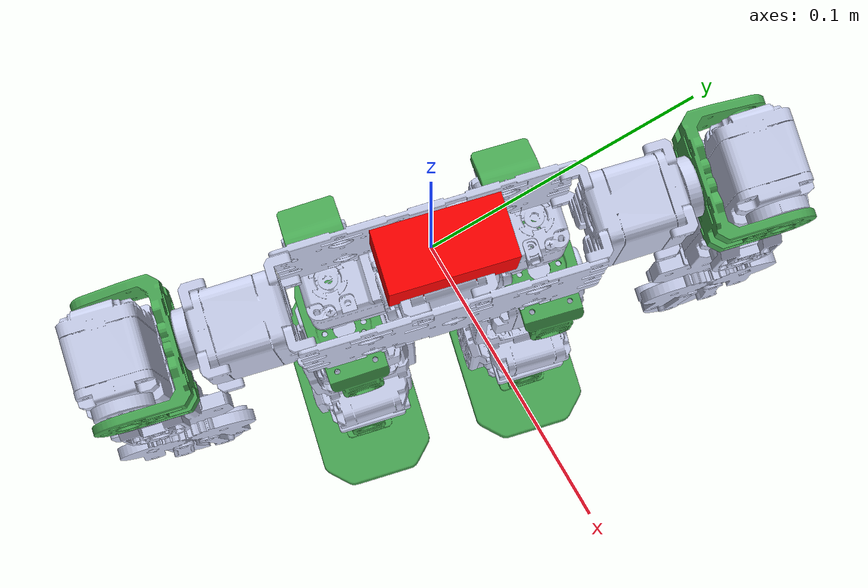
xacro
<?xml version="1.0"?>
<robot xmlns:xacro="http://www.ros.org/wiki/xacro" name="view_robot_pkg">
    <xacro:arg name="initial_positions_file" default="initial_positions.yaml" />

    <!-- Import view_robot_pkg urdf file -->
    <xacro:include filename="$(find view_robot_pkg)/urdf/robot_description.urdf" />

    <!-- Import control_xacro -->
    <xacro:include filename="view_robot_pkg.ros2_control.xacro" />

    <xacro:view_robot_pkg_ros2_control name="FakeSystem" initial_positions_file="$(arg initial_positions_file)"/>

</robot>

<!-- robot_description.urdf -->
<robot
  name="view_robot_pkg">
  <link
    name="base_lin">
    <inertial>
      <origin
        xyz="0.00360572903498757 0.00118309605607281 0.00217711576246571"
        rpy="0 0 0" />
      <mass
        value="0.00436456608198958" />
      <inertia
        ixx="1.03700098227038E-06"
        ixy="-1.2808652170486E-07"
        ixz="-1.24574759195156E-07"
        iyy="5.23421759609031E-07"
        iyz="3.00902000693848E-08"
        izz="1.11895824239189E-06" />
    </inertial>
    <visual>
      <origin
        xyz="0 0 0"
        rpy="0 0 0" />
      <geometry>
        <mesh
          filename="package://view_robot_pkg/meshes/base_lin.STL" />
      </geometry>
      <material
        name="">
        <color
          rgba="0.792156862745098 0.819607843137255 0.933333333333333 1" />
      </material>
    </visual>
    <collision>
      <origin
        xyz="0 0 0"
        rpy="0 0 0" />
      <geometry>
        <mesh
          filename="package://view_robot_pkg/meshes/base_lin.STL" />
      </geometry>
    </collision>
  </link>
  <link
    name="R_W_1">
    <inertial>
      <origin
        xyz="0.0135310577359082 -0.0355253365427388 -0.052761768139199"
        rpy="0 0 0" />
      <mass
        value="0.152073564561278" />
      <inertia
        ixx="0.00220129498898566"
        ixy="-2.43000627132473E-06"
        ixz="-5.02051972199334E-06"
        iyy="0.00129797606901867"
        iyz="4.95365662374062E-06"
        izz="0.000970481901105194" />
    </inertial>
    <visual>
      <origin
        xyz="0 0 0"
        rpy="0 0 0" />
      <geometry>
        <mesh
          filename="package://view_robot_pkg/meshes/R_W_1.STL" />
      </geometry>
      <material
        name="">
        <color
          rgba="0.286274509803922 0.662745098039216 0.329411764705882 1" />
      </material>
    </visual>
    <collision>
      <origin
        xyz="0 0 0"
        rpy="0 0 0" />
      <geometry>
        <mesh
          filename="package://view_robot_pkg/meshes/R_W_1.STL" />
      </geometry>
    </collision>
  </link>
  <joint
    name="LHip_yaw"
    type="revolute">
    <origin
      xyz="0.00811191095429442 0.0343859376847431 -0.0358999999999563"
      rpy="-0.0295865830615605 -0.00698131700551125 -0.231656625322495" />
    <parent
      link="base_lin" />
    <child
      link="R_W_1" />
    <axis
      xyz="-0.00698126029799116 0.0295815458381401 -0.99953799034878" />
    <limit
      lower="-2.79"
      upper="2.79"
      effort="1.2"
      velocity="6.3" />
  </joint>
  <link
    name="R_W_2">
    <inertial>
      <origin
        xyz="0.0348267429071289 -0.000161718132895672 -0.013079020937468"
        rpy="0 0 0" />
      <mass
        value="0.00053474319201658" />
      <inertia
        ixx="3.81196631534239E-09"
        ixy="4.8199716472387E-12"
        ixz="1.12935089535727E-11"
        iyy="4.21629884233603E-09"
        iyz="-2.45179082569498E-11"
        izz="5.38948960510623E-09" />
    </inertial>
    <visual>
      <origin
        xyz="0 0 0"
        rpy="0 0 0" />
      <geometry>
        <mesh
          filename="package://view_robot_pkg/meshes/R_W_2.STL" />
      </geometry>
      <material
        name="">
        <color
          rgba="0.792156862745098 0.819607843137255 0.933333333333333 1" />
      </material>
    </visual>
    <collision>
      <origin
        xyz="0 0 0"
        rpy="0 0 0" />
      <geometry>
        <mesh
          filename="package://view_robot_pkg/meshes/R_W_2.STL" />
      </geometry>
    </collision>
  </link>
  <joint
    name="LHip_roll"
    type="revolute">
    <origin
      xyz="-0.0350660356311487 0.00115022718562807 -0.0240322725212692"
      rpy="0 0 0" />
    <parent
      link="R_W_1" />
    <child
      link="R_W_2" />
    <axis
      xyz="0.999896590427051 -0.0123609060710088 -0.00734958865932969" />
    <limit
      lower="-2.79"
      upper="2.79"
      effort="1.2"
      velocity="6.3" />
  </joint>
  <link
    name="R_W_3">
    <inertial>
      <origin
        xyz="-0.00366906536477185 0.0206923269048276 -0.064013310924508"
        rpy="0 0 0" />
      <mass
        value="0.00409019778385964" />
      <inertia
        ixx="1.06330826557753E-06"
        ixy="-3.67250983349582E-09"
        ixz="-1.27947501575626E-07"
        iyy="4.91110344706927E-07"
        iyz="-1.75096861655991E-08"
        izz="1.11815791917397E-06" />
    </inertial>
    <visual>
      <origin
        xyz="0 0 0"
        rpy="0 0 0" />
      <geometry>
        <mesh
          filename="package://view_robot_pkg/meshes/R_W_3.STL" />
      </geometry>
      <material
        name="">
        <color
          rgba="0.792156862745098 0.819607843137255 0.933333333333333 1" />
      </material>
    </visual>
    <collision>
      <origin
        xyz="0 0 0"
        rpy="0 0 0" />
      <geometry>
        <mesh
          filename="package://view_robot_pkg/meshes/R_W_3.STL" />
      </geometry>
    </collision>
  </link>
  <joint
    name="LHip_pitch"
    type="revolute">
    <origin
      xyz="0.0462337025626653 -0.0223530513381598 -0.00111240331126483"
      rpy="0 0 0" />
    <parent
      link="R_W_2" />
    <child
      link="R_W_3" />
    <axis
      xyz="-0.0125726074067991 -0.999485937943567 -0.0294921921203482" />
    <limit
      lower="-2.79"
      upper="2.79"
      effort="1.2"
      velocity="6.3" />
  </joint>
  <link
    name="R_N_1">
    <inertial>
      <origin
        xyz="0.0180911931167852 0.0174794377607834 -0.0155248520163054"
        rpy="0 0 0" />
      <mass
        value="0.00406217575232337" />
      <inertia
        ixx="3.58680966433164E-07"
        ixy="-1.36796623061842E-09"
        ixz="3.00792440067483E-09"
        iyy="4.52712722842304E-07"
        iyz="-9.83119522170605E-09"
        izz="7.96923604729599E-07" />
    </inertial>
    <visual>
      <origin
        xyz="0 0 0"
        rpy="0 0 0" />
      <geometry>
        <mesh
          filename="package://view_robot_pkg/meshes/R_N_1.STL" />
      </geometry>
      <material
        name="">
        <color
          rgba="0.792156862745098 0.819607843137255 0.933333333333333 1" />
      </material>
    </visual>
    <collision>
      <origin
        xyz="0 0 0"
        rpy="0 0 0" />
      <geometry>
        <mesh
          filename="package://view_robot_pkg/meshes/R_N_1.STL" />
      </geometry>
    </collision>
  </link>
  <joint
    name="LKnee_pitch"
    type="revolute">
    <origin
      xyz="-0.0122338652690933 0.00291198983896201 -0.0773641940455132"
      rpy="0 0 0" />
    <parent
      link="R_W_3" />
    <child
      link="R_N_1" />
    <axis
      xyz="0.012572607406823 0.999485937943566 0.0294921921203551" />
    <limit
      lower="-2.79"
      upper="2.79"
      effort="1.2"
      velocity="6.3" />
  </joint>
  <link
    name="R_A_1">
    <inertial>
      <origin
        xyz="0.00906436446976777 0.0212998378074056 0.00109078883632363"
        rpy="0 0 0" />
      <mass
        value="0.00272881286947315" />
      <inertia
        ixx="1.64229681803521E-07"
        ixy="2.4326999108096E-10"
        ixz="-1.3340308998563E-10"
        iyy="8.86535064342371E-08"
        iyz="-1.26998727090048E-10"
        izz="9.18493082595308E-08" />
    </inertial>
    <visual>
      <origin
        xyz="0 0 0"
        rpy="0 0 0" />
      <geometry>
        <mesh
          filename="package://view_robot_pkg/meshes/R_A_1.STL" />
      </geometry>
      <material
        name="">
        <color
          rgba="0.792156862745098 0.819607843137255 0.933333333333333 1" />
      </material>
    </visual>
    <collision>
      <origin
        xyz="0 0 0"
        rpy="0 0 0" />
      <geometry>
        <mesh
          filename="package://view_robot_pkg/meshes/R_A_1.STL" />
      </geometry>
    </collision>
  </link>
  <joint
    name="LAnkle_pitch"
    type="revolute">
    <origin
      xyz="0.0116386736214952 0.00109273068918236 -0.0774847266386327"
      rpy="0 0 0" />
    <parent
      link="R_N_1" />
    <child
      link="R_A_1" />
    <axis
      xyz="0.00321902611343638 -0.999556505100927 -0.0296045770329757" />
    <limit
      lower="-2.79"
      upper="2.79"
      effort="1.2"
      velocity="6.3" />
  </joint>
  <link
    name="R_A_2">
    <inertial>
      <origin
        xyz="0.0430494211015171 0.00106475615608614 -0.0292398518791859"
        rpy="0 0 0" />
      <mass
        value="0.0107696045303586" />
      <inertia
        ixx="2.38077899159162E-06"
        ixy="-7.53555463459518E-10"
        ixz="5.55369185912146E-08"
        iyy="7.30172054483324E-06"
        iyz="-6.9852711783785E-08"
        izz="9.65966781504387E-06" />
    </inertial>
    <visual>
      <origin
        xyz="0 0 0"
        rpy="0 0 0" />
      <geometry>
        <mesh
          filename="package://view_robot_pkg/meshes/R_A_2.STL" />
      </geometry>
      <material
        name="">
        <color
          rgba="0.286274509803922 0.662745098039216 0.329411764705882 1" />
      </material>
    </visual>
    <collision>
      <origin
        xyz="0 0 0"
        rpy="0 0 0" />
      <geometry>
        <mesh
          filename="package://view_robot_pkg/meshes/R_A_2.STL" />
      </geometry>
    </collision>
  </link>
  <joint
    name="LAnkle_roll"
    type="revolute">
    <origin
      xyz="-0.0466491161038564 0.0211292222358059 0.000725339778560485"
      rpy="0 0 0" />
    <parent
      link="R_A_1" />
    <child
      link="R_A_2" />
    <axis
      xyz="0.999964392032425 0.00344846027439361 -0.00770212885881819" />
    <limit
      lower="-2.79"
      upper="2.79"
      effort="1.2"
      velocity="6.3" />
  </joint>
  <link
    name="L_W_1">
    <inertial>
      <origin
        xyz="0.0198755299031583 0.0300308834006024 -0.0518252471094609"
        rpy="0 0 0" />
      <mass
        value="0.152073564561278" />
      <inertia
        ixx="0.00216862030111371"
        ixy="-0.000168715022494926"
        ixz="2.27879942313857E-06"
        iyy="0.00133058381521921"
        iyz="-7.6047271917558E-06"
        izz="0.000970548842776614" />
    </inertial>
    <visual>
      <origin
        xyz="0 0 0"
        rpy="0 0 0" />
      <geometry>
        <mesh
          filename="package://view_robot_pkg/meshes/L_W_1.STL" />
      </geometry>
      <material
        name="">
        <color
          rgba="0.286274509803922 0.662745098039216 0.329411764705882 1" />
      </material>
    </visual>
    <collision>
      <origin
        xyz="0 0 0"
        rpy="0 0 0" />
      <geometry>
        <mesh
          filename="package://view_robot_pkg/meshes/L_W_1.STL" />
      </geometry>
    </collision>
  </link>
  <joint
    name="RHip_yaw"
    type="revolute">
    <origin
      xyz="-0.00811115881539393 -0.034382750486029 -0.0359000000000256"
      rpy="0.00685752129495438 -0.00130889866810499 -0.0430575611663204" />
    <parent
      link="base_lin" />
    <child
      link="L_W_1" />
    <axis
      xyz="-0.00130889829658463 -0.00685746167291572 -0.999975630705396" />
    <limit
      lower="-2.79"
      upper="2.79"
      effort="1.2"
      velocity="6.3" />
  </joint>
  <link
    name="L_W_2">
    <inertial>
      <origin
        xyz="0.0349529105405521 0.000637258724828671 0.00110937814476841"
        rpy="0 0 0" />
      <mass
        value="0.000548582459427165" />
      <inertia
        ixx="4.2009379147889E-09"
        ixy="4.5835594675733E-12"
        ixz="9.19876249753698E-12"
        iyy="3.94859601140859E-09"
        iyz="-5.84836288599058E-11"
        izz="5.46020489769509E-09" />
    </inertial>
    <visual>
      <origin
        xyz="0 0 0"
        rpy="0 0 0" />
      <geometry>
        <mesh
          filename="package://view_robot_pkg/meshes/L_W_2.STL" />
      </geometry>
      <material
        name="">
        <color
          rgba="0.792156862745098 0.819607843137255 0.933333333333333 1" />
      </material>
    </visual>
    <collision>
      <origin
        xyz="0 0 0"
        rpy="0 0 0" />
      <geometry>
        <mesh
          filename="package://view_robot_pkg/meshes/L_W_2.STL" />
      </geometry>
    </collision>
  </link>
  <joint
    name="RHip_roll"
    type="revolute">
    <origin
      xyz="-0.0344340076210223 0.00570690748207037 -0.0242946563290467"
      rpy="-0.0365680701988691 -0.00698114687545119 -0.188554812891601" />
    <parent
      link="L_W_1" />
    <child
      link="L_W_2" />
    <axis
      xyz="0.999785460209647 0.019699590675994 -0.00639997504543661" />
    <limit
      lower="-2.79"
      upper="2.79"
      effort="1.2"
      velocity="6.3" />
  </joint>
  <link
    name="L_W_3">
    <inertial>
      <origin
        xyz="-0.00368840681064642 -0.0172743724623736 -0.0653797701648462"
        rpy="0 0 0" />
      <mass
        value="0.00416880860873003" />
      <inertia
        ixx="1.06373644976686E-06"
        ixy="1.47090858434795E-08"
        ixz="-1.27369159994478E-07"
        iyy="4.92510709050603E-07"
        iyz="-2.17234809212734E-08"
        izz="1.11844723976545E-06" />
    </inertial>
    <visual>
      <origin
        xyz="0 0 0"
        rpy="0 0 0" />
      <geometry>
        <mesh
          filename="package://view_robot_pkg/meshes/L_W_3.STL" />
      </geometry>
      <material
        name="">
        <color
          rgba="0.792156862745098 0.819607843137255 0.933333333333333 1" />
      </material>
    </visual>
    <collision>
      <origin
        xyz="0 0 0"
        rpy="0 0 0" />
      <geometry>
        <mesh
          filename="package://view_robot_pkg/meshes/L_W_3.STL" />
      </geometry>
    </collision>
  </link>
  <joint
    name="RHip_pitch"
    type="revolute">
    <origin
      xyz="0.0461667822915901 0.0215038971400305 4.99520127628106E-05"
      rpy="0 0 0" />
    <parent
      link="L_W_2" />
    <child
      link="L_W_3" />
    <axis
      xyz="-0.0195011681197361 0.999368229569572 0.0297127273898547" />
    <limit
      lower="-2.79"
      upper="2.79"
      effort="1.2"
      velocity="6.3" />
  </joint>
  <link
    name="L_N_1">
    <inertial>
      <origin
        xyz="0.0182399394741348 -0.0206609308045556 -0.0166545672069358"
        rpy="0 0 0" />
      <mass
        value="0.00406217499121926" />
      <inertia
        ixx="3.5868071601581E-07"
        ixy="-1.3554655679744E-09"
        ixz="2.9967520697757E-09"
        iyy="4.52712810861831E-07"
        iyz="-9.83132372705578E-09"
        izz="7.96923757052267E-07" />
    </inertial>
    <visual>
      <origin
        xyz="0 0 0"
        rpy="0 0 0" />
      <geometry>
        <mesh
          filename="package://view_robot_pkg/meshes/L_N_1.STL" />
      </geometry>
      <material
        name="">
        <color
          rgba="0.792156862745098 0.819607843137255 0.933333333333333 1" />
      </material>
    </visual>
    <collision>
      <origin
        xyz="0 0 0"
        rpy="0 0 0" />
      <geometry>
        <mesh
          filename="package://view_robot_pkg/meshes/L_N_1.STL" />
      </geometry>
    </collision>
  </link>
  <joint
    name="RKnee_pitch"
    type="revolute">
    <origin
      xyz="-0.0122292736907317 0.00158734307245378 -0.0774034293266377"
      rpy="0 0 0" />
    <parent
      link="L_W_3" />
    <child
      link="L_N_1" />
    <axis
      xyz="0.0195011681198009 -0.999368229569575 -0.0297127273897283" />
    <limit
      lower="-2.79"
      upper="2.79"
      effort="1.2"
      velocity="6.3" />
  </joint>
  <link
    name="L_A_1">
    <inertial>
      <origin
        xyz="0.00921711872720943 -0.0200210253235265 0.00261268459792596"
        rpy="0 0 0" />
      <mass
        value="0.00270980906824081" />
      <inertia
        ixx="1.64099947129278E-07"
        ixy="5.85484159216669E-10"
        ixz="-5.54936055314888E-11"
        iyy="8.8811595074974E-08"
        iyz="-1.26594825208358E-10"
        izz="9.12773083050912E-08" />
    </inertial>
    <visual>
      <origin
        xyz="0 0 0"
        rpy="0 0 0" />
      <geometry>
        <mesh
          filename="package://view_robot_pkg/meshes/L_A_1.STL" />
      </geometry>
      <material
        name="">
        <color
          rgba="0.792156862745098 0.819607843137255 0.933333333333333 1" />
      </material>
    </visual>
    <collision>
      <origin
        xyz="0 0 0"
        rpy="0 0 0" />
      <geometry>
        <mesh
          filename="package://view_robot_pkg/meshes/L_A_1.STL" />
      </geometry>
    </collision>
  </link>
  <joint
    name="RAnkle_pitch"
    type="revolute">
    <origin
      xyz="0.0116621204095037 -0.000762059454564312 -0.0775407363717699"
      rpy="0 0 0" />
    <parent
      link="L_N_1" />
    <child
      link="L_A_1" />
    <axis
      xyz="-0.00321902611345547 0.999556505100927 0.0296045770329677" />
    <limit
      lower="-2.79"
      upper="2.79"
      effort="1.2"
      velocity="6.3" />
  </joint>
  <link
    name="L_A_2">
    <inertial>
      <origin
        xyz="0.0430733910529578 0.00106370731759919 -0.0292045648561665"
        rpy="0 0 0" />
      <mass
        value="0.0107696045304608" />
      <inertia
        ixx="2.3806928274237E-06"
        ixy="-5.76895170545883E-10"
        ixz="4.95703457127456E-08"
        iyy="7.30172055642596E-06"
        iyz="-6.98541822287163E-08"
        izz="9.65975396775113E-06" />
    </inertial>
    <visual>
      <origin
        xyz="0 0 0"
        rpy="0 0 0" />
      <geometry>
        <mesh
          filename="package://view_robot_pkg/meshes/L_A_2.STL" />
      </geometry>
      <material
        name="">
        <color
          rgba="0.286274509803922 0.662745098039216 0.329411764705882 1" />
      </material>
    </visual>
    <collision>
      <origin
        xyz="0 0 0"
        rpy="0 0 0" />
      <geometry>
        <mesh
          filename="package://view_robot_pkg/meshes/L_A_2.STL" />
      </geometry>
    </collision>
  </link>
  <joint
    name="RAnkle_roll"
    type="revolute">
    <origin
      xyz="-0.0464504790035918 -0.0206894543645093 -0.000414864266030435"
      rpy="0 0 0" />
    <parent
      link="L_A_1" />
    <child
      link="L_A_2" />
    <axis
      xyz="0.99997044950115 0.00342421615067466 -0.00688294037609805" />
    <limit
      lower="-2.79"
      upper="2.79"
      effort="1.2"
      velocity="6.3" />
  </joint>
  <link
    name="Upper_body">
    <inertial>
      <origin
        xyz="0.00100722535937103 -0.0202566857675417 0.0151964571900813"
        rpy="0 0 0" />
      <mass
        value="0.0205774766400463" />
      <inertia
        ixx="1.64988049423163E-05"
        ixy="-2.22421726148623E-09"
        ixz="-2.04398960610794E-08"
        iyy="2.97052147537651E-06"
        iyz="-3.13992649129696E-07"
        izz="1.3571680294212E-05" />
    </inertial>
    <visual>
      <origin
        xyz="0 0 0"
        rpy="0 0 0" />
      <geometry>
        <mesh
          filename="package://view_robot_pkg/meshes/Upper_body.STL" />
      </geometry>
      <material
        name="">
        <color
          rgba="0.792156862745098 0.819607843137255 0.933333333333333 1" />
      </material>
    </visual>
    <collision>
      <origin
        xyz="0 0 0"
        rpy="0 0 0" />
      <geometry>
        <mesh
          filename="package://view_robot_pkg/meshes/Upper_body.STL" />
      </geometry>
    </collision>
  </link>
  <joint
    name="Upper_body_joint"
    type="revolute">
    <origin
      xyz="0.0155859734030666 0.0150977984615721 0.0154999999999887"
      rpy="-0.0295865830615605 -0.00698131700551125 -0.231656625322495" />
    <parent
      link="base_lin" />
    <child
      link="Upper_body" />
    <axis
      xyz="-0.000181925773328471 -0.999562370008579 -0.0295809967013674" />
    <limit
      lower="0"
      upper="0"
      effort="1.2"
      velocity="0" />
  </joint>
  <link
    name="hL_sh1">
    <inertial>
      <origin
        xyz="0.00131091796412774 -0.00866235893889855 -0.000265533363404291"
        rpy="0 0 0" />
      <mass
        value="0.00373121734305147" />
      <inertia
        ixx="4.74256618274354E-07"
        ixy="9.7336627711189E-08"
        ixz="7.68570035006557E-09"
        iyy="1.0351058806852E-06"
        iyz="-4.44418779135314E-09"
        izz="1.16211248513842E-06" />
    </inertial>
    <visual>
      <origin
        xyz="0 0 0"
        rpy="0 0 0" />
      <geometry>
        <mesh
          filename="package://view_robot_pkg/meshes/hL_sh1.STL" />
      </geometry>
      <material
        name="">
        <color
          rgba="0.286274509803922 0.662745098039216 0.329411764705882 1" />
      </material>
    </visual>
    <collision>
      <origin
        xyz="0 0 0"
        rpy="0 0 0" />
      <geometry>
        <mesh
          filename="package://view_robot_pkg/meshes/hL_sh1.STL" />
      </geometry>
    </collision>
  </link>
  <joint
    name="Rshoulder_pitch"
    type="revolute">
    <origin
      xyz="0.00101152037119112 -0.101559924097068 0.0250260965550666"
      rpy="0 0 0" />
    <parent
      link="Upper_body" />
    <child
      link="hL_sh1" />
    <axis
      xyz="0.000181925773391679 0.999562370008603 0.0295809967005423" />
    <limit
      lower="-2.79"
      upper="2.79"
      effort="1.2"
      velocity="6.3" />
  </joint>
  <link
    name="hL_sh2">
    <inertial>
      <origin
        xyz="0.00135125140164027 -0.0480052886531075 -0.0209137174718051"
        rpy="0 0 0" />
      <mass
        value="0.0072690936477349" />
      <inertia
        ixx="1.3265592589259E-06"
        ixy="-6.3694991284233E-10"
        ixz="-2.97204485828927E-09"
        iyy="1.34718911610898E-06"
        iyz="1.03170921059654E-07"
        izz="6.39556655299642E-07" />
    </inertial>
    <visual>
      <origin
        xyz="0 0 0"
        rpy="0 0 0" />
      <geometry>
        <mesh
          filename="package://view_robot_pkg/meshes/hL_sh2.STL" />
      </geometry>
      <material
        name="">
        <color
          rgba="0.792156862745098 0.819607843137255 0.933333333333333 1" />
      </material>
    </visual>
    <collision>
      <origin
        xyz="0 0 0"
        rpy="0 0 0" />
      <geometry>
        <mesh
          filename="package://view_robot_pkg/meshes/hL_sh2.STL" />
      </geometry>
    </collision>
  </link>
  <joint
    name="Rshoulder_roll"
    type="revolute">
    <origin
      xyz="0.01899560198786 -0.0215900909300901 -0.000771639290922721"
      rpy="1.5707963267949 0 1.5707963267949" />
    <parent
      link="hL_sh1" />
    <child
      link="hL_sh2" />
    <axis
      xyz="2.46709159273879E-05 -0.00698358673469218 0.999975614156498" />
    <limit
      lower="-2.79"
      upper="2.79"
      effort="1.2"
      velocity="6.3" />
  </joint>
  <link
    name="hL_e">
    <inertial>
      <origin
        xyz="-0.00108595272484013 -0.0511817177287948 -0.0181567313690575"
        rpy="0 0 0" />
      <mass
        value="0.0159991858724107" />
      <inertia
        ixx="1.21525410938445E-06"
        ixy="8.46502282966865E-08"
        ixz="-1.91757925355194E-08"
        iyy="1.97255379218827E-06"
        iyz="4.35639498448052E-08"
        izz="2.18814673519924E-06" />
    </inertial>
    <visual>
      <origin
        xyz="0 0 0"
        rpy="0 0 0" />
      <geometry>
        <mesh
          filename="package://view_robot_pkg/meshes/hL_e.STL" />
      </geometry>
      <material
        name="">
        <color
          rgba="0.792156862745098 0.819607843137255 0.933333333333333 1" />
      </material>
    </visual>
    <collision>
      <origin
        xyz="0 0 0"
        rpy="0 0 0" />
      <geometry>
        <mesh
          filename="package://view_robot_pkg/meshes/hL_e.STL" />
      </geometry>
    </collision>
  </link>
  <joint
    name="Relbow_roll"
    type="revolute">
    <origin
      xyz="0.0019079 -0.067834 -0.0027738"
      rpy="0 0 0" />
    <parent
      link="hL_sh2" />
    <child
      link="hL_e" />
    <axis
      xyz="2.6821E-05 -0.0069835 0.99998" />
    <limit
      lower="-2.79"
      upper="2.79"
      effort="1.2"
      velocity="6.3" />
  </joint>
  <link
    name="right_link_RG_joint">
    <inertial>
      <origin
        xyz="-0.00624999999938902 -0.00162912039424912 -0.0128975178670396"
        rpy="0 0 0" />
      <mass
        value="0.00139752482636938" />
      <inertia
        ixx="1.39538807855437E-07"
        ixy="7.86999506504697E-20"
        ixz="6.36951512171121E-19"
        iyy="1.34640696691803E-07"
        iyz="-1.61754818418713E-08"
        izz="8.62484403395177E-09" />
    </inertial>
    <visual>
      <origin
        xyz="0 0 0"
        rpy="0 0 0" />
      <geometry>
        <mesh
          filename="package://view_robot_pkg/meshes/right_link_RG_joint.STL" />
      </geometry>
      <material
        name="">
        <color
          rgba="0.792156862745098 0.819607843137255 0.933333333333333 1" />
      </material>
    </visual>
    <collision>
      <origin
        xyz="0 0 0"
        rpy="0 0 0" />
      <geometry>
        <mesh
          filename="package://view_robot_pkg/meshes/right_link_RG_joint.STL" />
      </geometry>
    </collision>
  </link>
  <joint
    name="right_link_RG"
    type="revolute">
    <origin
      xyz="0.00044735 -0.07088 -0.0025451"
      rpy="0.025745 -1.5638 -1.567" />
    <parent
      link="hL_e" />
    <child
      link="right_link_RG_joint" />
    <axis
      xyz="1 0 0" />
    <limit
      lower="-1.57"
      upper="1.57"
      effort="0.18"
      velocity="10.7" />
    <mimic
      joint="Right_gear_RG"
      multiplier="-1"
      offset="0" />
  </joint>
  <link
    name="left_link_RG_joint">
    <inertial>
      <origin
        xyz="-0.00624999999939946 0.00146284315163947 -0.0129174335412123"
        rpy="0 0 0" />
      <mass
        value="0.00139752482636938" />
      <inertia
        ixx="1.39538807855438E-07"
        ixy="-7.07930151856063E-20"
        ixz="6.39047138710107E-19"
        iyy="1.35036486928344E-07"
        iyz="1.45469487788438E-08"
        izz="8.22905379741309E-09" />
    </inertial>
    <visual>
      <origin
        xyz="0 0 0"
        rpy="0 0 0" />
      <geometry>
        <mesh
          filename="package://view_robot_pkg/meshes/left_link_RG_joint.STL" />
      </geometry>
      <material
        name="">
        <color
          rgba="0.792156862745098 0.819607843137255 0.933333333333333 1" />
      </material>
    </visual>
    <collision>
      <origin
        xyz="0 0 0"
        rpy="0 0 0" />
      <geometry>
        <mesh
          filename="package://view_robot_pkg/meshes/left_link_RG_joint.STL" />
      </geometry>
    </collision>
  </link>
  <joint
    name="left_link_RG"
    type="revolute">
    <origin
      xyz="0.010443 -0.070584 -0.0025433"
      rpy="0.025745 -1.5638 -1.567" />
    <parent
      link="hL_e" />
    <child
      link="left_link_RG_joint" />
    <axis
      xyz="-1 0 0" />
    <limit
      lower="-1.57"
      upper="1.57"
      effort="0.18"
      velocity="10.7" />
    <mimic
      joint="Right_gear_RG"
      multiplier="-1"
      offset="0" />
  </joint>
  <link
    name="Right_gear_RG_joint">
    <inertial>
      <origin
        xyz="4.77728967496205E-13 0.00016594842143558 -0.00405315130518313"
        rpy="0 0 0" />
      <mass
        value="0.00242320126079168" />
      <inertia
        ixx="3.41846920844848E-07"
        ixy="1.301432726039E-19"
        ixz="1.21286737673235E-18"
        iyy="2.55684137221555E-07"
        iyz="-2.67095542763266E-08"
        izz="9.26246536520713E-08" />
    </inertial>
    <visual>
      <origin
        xyz="0 0 0"
        rpy="0 0 0" />
      <geometry>
        <mesh
          filename="package://view_robot_pkg/meshes/Right_gear_RG_joint.STL" />
      </geometry>
      <material
        name="">
        <color
          rgba="0.792156862745098 0.819607843137255 0.933333333333333 1" />
      </material>
    </visual>
    <collision>
      <origin
        xyz="0 0 0"
        rpy="0 0 0" />
      <geometry>
        <mesh
          filename="package://view_robot_pkg/meshes/Right_gear_RG_joint.STL" />
      </geometry>
    </collision>
  </link>
  <joint
    name="Right_gear_RG"
    type="revolute">
    <origin
      xyz="-0.00904038284810671 -0.051152434659326 -0.0024070404355967"
      rpy="0.0257453763099395 -1.56381269541651 -1.56695574759296" />
    <parent
      link="hL_e" />
    <child
      link="Right_gear_RG_joint" />
    <axis
      xyz="-1 0 0" />
    <limit
      lower="-1.57"
      upper="1.57"
      effort="0.18"
      velocity="10.7" />
  </joint>
  <link
    name="Right_finger_RG_joint">
    <inertial>
      <origin
        xyz="-0.00450000588206523 0.00643932780470902 -0.0264947872009815"
        rpy="0 0 0" />
      <mass
        value="0.00317495861984542" />
      <inertia
        ixx="1.00818470091617E-06"
        ixy="4.84072552656453E-12"
        ixz="-3.70875898561584E-13"
        iyy="9.56385097263167E-07"
        iyz="1.49240693633751E-07"
        izz="6.50286333620689E-08" />
    </inertial>
    <visual>
      <origin
        xyz="0 0 0"
        rpy="0 0 0" />
      <geometry>
        <mesh
          filename="package://view_robot_pkg/meshes/Right_finger_RG_joint.STL" />
      </geometry>
      <material
        name="">
        <color
          rgba="0.792156862745098 0.819607843137255 0.933333333333333 1" />
      </material>
    </visual>
    <collision>
      <origin
        xyz="0 0 0"
        rpy="0 0 0" />
      <geometry>
        <mesh
          filename="package://view_robot_pkg/meshes/Right_finger_RG_joint.STL" />
      </geometry>
    </collision>
  </link>
  <joint
    name="Right_finger_RG"
    type="revolute">
    <origin
      xyz="0 -0.0030207 -0.025572"
      rpy="0 0 0" />
    <parent
      link="Right_gear_RG_joint" />
    <child
      link="Right_finger_RG_joint" />
    <axis
      xyz="-1 0 0" />
    <limit
      lower="-1.57"
      upper="1.57"
      effort="0.18"
      velocity="10.7" />
    <mimic
      joint="Right_gear_RG"
      multiplier="-1"
      offset="0" />
  </joint>
  <link
    name="left_gear_RG_joint">
    <inertial>
      <origin
        xyz="4.71733763163229E-13 -0.000110358378073272 -0.00404162250451834"
        rpy="0 0 0" />
      <mass
        value="0.00248161328462976" />
      <inertia
        ixx="3.41732297320524E-07"
        ixy="-1.39773283445848E-19"
        ixz="1.20733679545803E-18"
        iyy="2.54729230795644E-07"
        iyz="2.87255508891157E-08"
        izz="9.36207019505596E-08" />
    </inertial>
    <visual>
      <origin
        xyz="0 0 0"
        rpy="0 0 0" />
      <geometry>
        <mesh
          filename="package://view_robot_pkg/meshes/left_gear_RG_joint.STL" />
      </geometry>
      <material
        name="">
        <color
          rgba="0.792156862745098 0.819607843137255 0.933333333333333 1" />
      </material>
    </visual>
    <collision>
      <origin
        xyz="0 0 0"
        rpy="0 0 0" />
      <geometry>
        <mesh
          filename="package://view_robot_pkg/meshes/left_gear_RG_joint.STL" />
      </geometry>
    </collision>
  </link>
  <joint
    name="left_gear_RG"
    type="revolute">
    <origin
      xyz="0.0178478449034265 -0.0503567054438041 -0.002402204490914"
      rpy="0.0257453763099395 -1.56381269541651 -1.56695574759296" />
    <parent
      link="hL_e" />
    <child
      link="left_gear_RG_joint" />
    <axis
      xyz="1 0 0" />
    <limit
      lower="-1.57"
      upper="1.57"
      effort="0.18"
      velocity="10.7" />
    <mimic
      joint="Right_gear_RG"
      multiplier="1"
      offset="0" />
  </joint>
  <link
    name="left_finger_RG_joint">
    <inertial>
      <origin
        xyz="-0.0044999867095219 -0.00617417186440372 -0.0265578218707025"
        rpy="0 0 0" />
      <mass
        value="0.00317495858496895" />
      <inertia
        ixx="1.00818466475774E-06"
        ixy="4.8364207233801E-12"
        ixz="4.20111704251237E-13"
        iyy="9.59279382264501E-07"
        iyz="-1.40301800368464E-07"
        izz="6.21343121145496E-08" />
    </inertial>
    <visual>
      <origin
        xyz="0 0 0"
        rpy="0 0 0" />
      <geometry>
        <mesh
          filename="package://view_robot_pkg/meshes/left_finger_RG_joint.STL" />
      </geometry>
      <material
        name="">
        <color
          rgba="0.792156862745098 0.819607843137255 0.933333333333333 1" />
      </material>
    </visual>
    <collision>
      <origin
        xyz="0 0 0"
        rpy="0 0 0" />
      <geometry>
        <mesh
          filename="package://view_robot_pkg/meshes/left_finger_RG_joint.STL" />
      </geometry>
    </collision>
  </link>
  <joint
    name="left_finger_RG"
    type="revolute">
    <origin
      xyz="0 0.00338553552667054 -0.0255264695797015"
      rpy="0 0 0" />
    <parent
      link="left_gear_RG_joint" />
    <child
      link="left_finger_RG_joint" />
    <axis
      xyz="1 0 0" />
    <limit
      lower="-1.57"
      upper="1.57"
      effort="0.18"
      velocity="10.7" />
    <mimic
      joint="Right_gear_RG"
      multiplier="-1"
      offset="0" />
  </joint>
  <link
    name="hr_sh1">
    <inertial>
      <origin
        xyz="0.00131406268079337 0.00866239401866364 0.000247183234635795"
        rpy="0 0 0" />
      <mass
        value="0.00373121730714512" />
      <inertia
        ixx="4.74185734875702E-07"
        ixy="-9.74168836873543E-08"
        ixz="1.92364721755129E-09"
        iyy="1.03509626735371E-06"
        iyz="-3.08421998385708E-09"
        izz="1.16219295785583E-06" />
    </inertial>
    <visual>
      <origin
        xyz="0 0 0"
        rpy="0 0 0" />
      <geometry>
        <mesh
          filename="package://view_robot_pkg/meshes/hr_sh1.STL" />
      </geometry>
      <material
        name="">
        <color
          rgba="0.286274509803922 0.662745098039216 0.329411764705882 1" />
      </material>
    </visual>
    <collision>
      <origin
        xyz="0 0 0"
        rpy="0 0 0" />
      <geometry>
        <mesh
          filename="package://view_robot_pkg/meshes/hr_sh1.STL" />
      </geometry>
    </collision>
  </link>
  <joint
    name="Lshoulder_pitch"
    type="revolute">
    <origin
      xyz="0.00104096446219726 0.060169267832598 0.0298122840963835"
      rpy="0 0 0" />
    <parent
      link="Upper_body" />
    <child
      link="hr_sh1" />
    <axis
      xyz="-0.00018192577337194 -0.999562370008584 -0.0295809967011877" />
    <limit
      lower="-2.79"
      upper="2.79"
      effort="1.2"
      velocity="6.3" />
  </joint>
  <link
    name="hr_sh2">
    <inertial>
      <origin
        xyz="-0.0202138282256679 0.00101188605248215 -0.0480202042509639"
        rpy="0 0 0" />
      <mass
        value="0.00726909364773545" />
      <inertia
        ixx="6.39556655299694E-07"
        ixy="-2.97204485826868E-09"
        ixz="1.03170921059719E-07"
        iyy="1.32655925892601E-06"
        iyz="-6.36949912853332E-10"
        izz="1.34718911610908E-06" />
    </inertial>
    <visual>
      <origin
        xyz="0 0 0"
        rpy="0 0 0" />
      <geometry>
        <mesh
          filename="package://view_robot_pkg/meshes/hr_sh2.STL" />
      </geometry>
      <material
        name="">
        <color
          rgba="0.792156862745098 0.819607843137255 0.933333333333333 1" />
      </material>
    </visual>
    <collision>
      <origin
        xyz="0 0 0"
        rpy="0 0 0" />
      <geometry>
        <mesh
          filename="package://view_robot_pkg/meshes/hr_sh2.STL" />
      </geometry>
    </collision>
  </link>
  <joint
    name="Lshoulder_roll"
    type="revolute">
    <origin
      xyz="0.0190034845977193 0.0215910216665414 0.000506261459308988"
      rpy="0 0 0" />
    <parent
      link="hr_sh1" />
    <child
      link="hr_sh2" />
    <axis
      xyz="0.999975614156498 2.46709159308775E-05 -0.00698358673469515" />
    <limit
      lower="-2.79"
      upper="2.79"
      effort="1.2"
      velocity="6.3" />
  </joint>
  <link
    name="hr_e">
    <inertial>
      <origin
        xyz="-0.0181566758165128 0.00441901220074614 -0.0511525346440407"
        rpy="0 0 0" />
      <mass
        value="0.015999176996954" />
      <inertia
        ixx="2.18815927046705E-06"
        ixy="1.62194431100435E-08"
        ixz="4.45729464323839E-08"
        iyy="1.22788418320202E-06"
        iyz="-1.28779659746746E-07"
        izz="1.95990938555189E-06" />
    </inertial>
    <visual>
      <origin
        xyz="0 0 0"
        rpy="0 0 0" />
      <geometry>
        <mesh
          filename="package://view_robot_pkg/meshes/hr_e.STL" />
      </geometry>
      <material
        name="">
        <color
          rgba="0.792156862745098 0.819607843137255 0.933333333333333 1" />
      </material>
    </visual>
    <collision>
      <origin
        xyz="0 0 0"
        rpy="0 0 0" />
      <geometry>
        <mesh
          filename="package://view_robot_pkg/meshes/hr_e.STL" />
      </geometry>
    </collision>
  </link>
  <joint
    name="Lelbow_roll"
    type="revolute">
    <origin
      xyz="-0.002073890762049 0.00190794827611906 -0.0678386008964182"
      rpy="0 0 0" />
    <parent
      link="hr_sh2" />
    <child
      link="hr_e" />
    <axis
      xyz="0.999975614545494 2.6820905506732E-05 -0.00698352310799514" />
    <limit
      lower="-2.79"
      upper="2.79"
      effort="1.2"
      velocity="6.3" />
  </joint>
  <link
    name="left_link_LG_joint">
    <inertial>
      <origin
        xyz="-0.00624999999939901 0.000893448983509959 -0.0129692616884252"
        rpy="0 0 0" />
      <mass
        value="0.0013975248263694" />
      <inertia
        ixx="1.39538807855438E-07"
        ixy="-4.33378340609858E-20"
        ixz="6.43022090520245E-19"
        iyy="1.36069343622812E-07"
        iyz="8.92037104639254E-09"
        izz="7.19619710294459E-09" />
    </inertial>
    <visual>
      <origin
        xyz="0 0 0"
        rpy="0 0 0" />
      <geometry>
        <mesh
          filename="package://view_robot_pkg/meshes/left_link_LG_joint.STL" />
      </geometry>
      <material
        name="">
        <color
          rgba="0.792156862745098 0.819607843137255 0.933333333333333 1" />
      </material>
    </visual>
    <collision>
      <origin
        xyz="0 0 0"
        rpy="0 0 0" />
      <geometry>
        <mesh
          filename="package://view_robot_pkg/meshes/left_link_LG_joint.STL" />
      </geometry>
    </collision>
  </link>
  <joint
    name="left_link_LG"
    type="revolute">
    <origin
      xyz="-0.00254445629419009 0.00384586341249626 -0.0707793479664849"
      rpy="0.0295860491684953 0.00698357987316876 2.68215595276084E-05" />
    <parent
      link="hr_e" />
    <child
      link="left_link_LG_joint" />
    <axis
      xyz="1 0 0" />
    <limit
      lower="-1.57"
      upper="1.57"
      effort="0.18"
      velocity="10.7" />
    <mimic
      joint="left_gear_LG"
      multiplier="-1"
      offset="0" />
  </joint>
  <link
    name="right_link_LG_joint">
    <inertial>
      <origin
        xyz="-0.00624999999939713 -0.00212470649491348 -0.0128251948310587"
        rpy="0 0 0" />
      <mass
        value="0.00139752482636939" />
      <inertia
        ixx="1.39538807855438E-07"
        ixy="1.01857300029482E-19"
        ixz="6.28864054231091E-19"
        iyy="1.33208537628754E-07"
        iyz="-2.09778425655922E-08"
        izz="1.00570030970019E-08" />
    </inertial>
    <visual>
      <origin
        xyz="0 0 0"
        rpy="0 0 0" />
      <geometry>
        <mesh
          filename="package://view_robot_pkg/meshes/right_link_LG_joint.STL" />
      </geometry>
      <material
        name="">
        <color
          rgba="0.792156862745098 0.819607843137255 0.933333333333333 1" />
      </material>
    </visual>
    <collision>
      <origin
        xyz="0 0 0"
        rpy="0 0 0" />
      <geometry>
        <mesh
          filename="package://view_robot_pkg/meshes/right_link_LG_joint.STL" />
      </geometry>
    </collision>
  </link>
  <joint
    name="right_link_LG"
    type="revolute">
    <origin
      xyz="-0.00254625404314113 -0.00614976028701264 -0.0710751580837086"
      rpy="0.0295860491684953 0.00698357987316876 2.68215595276084E-05" />
    <parent
      link="hr_e" />
    <child
      link="right_link_LG_joint" />
    <axis
      xyz="-1 0 0" />
    <limit
      lower="-1.57"
      upper="1.57"
      effort="0.18"
      velocity="10.7" />
    <mimic
      joint="left_gear_LG"
      multiplier="-1"
      offset="0" />
  </joint>
  <link
    name="right_gear_LG_joint">
    <inertial>
      <origin
        xyz="4.70845584743529E-13 -9.311722442229E-05 -0.00404205650774703"
        rpy="0 0 0" />
      <mass
        value="0.00248161328462969" />
      <inertia
        ixx="3.41732297320512E-07"
        ixy="1.78034283572593E-19"
        ixz="1.1892622269895E-18"
        iyy="2.51434712067315E-07"
        iyz="-3.66753116660772E-08"
        izz="9.69152206788759E-08" />
    </inertial>
    <visual>
      <origin
        xyz="0 0 0"
        rpy="0 0 0" />
      <geometry>
        <mesh
          filename="package://view_robot_pkg/meshes/right_gear_LG_joint.STL" />
      </geometry>
      <material
        name="">
        <color
          rgba="0.792156862745098 0.819607843137255 0.933333333333333 1" />
      </material>
    </visual>
    <collision>
      <origin
        xyz="0 0 0"
        rpy="0 0 0" />
      <geometry>
        <mesh
          filename="package://view_robot_pkg/meshes/right_gear_LG_joint.STL" />
      </geometry>
    </collision>
  </link>
  <joint
    name="right_gear_LG"
    type="revolute">
    <origin
      xyz="-0.00240806703635066 -0.0147378901634019 -0.0513210463705125"
      rpy="0.0295860491684953 0.00698357987316876 2.68215595276084E-05" />
    <parent
      link="hr_e" />
    <child
      link="right_gear_LG_joint" />
    <axis
      xyz="1 0 0" />
    <limit
      lower="-1.57"
      upper="1.57"
      effort="0.18"
      velocity="10.7" />
    <mimic
      joint="left_gear_LG"
      multiplier="1"
      offset="0" />
  </joint>
  <link
    name="right_finger_LG_joint">
    <inertial>
      <origin
        xyz="-0.00450002135966299 0.00611687938194683 -0.0265710936414894"
        rpy="0 0 0" />
      <mass
        value="0.0031749832619267" />
      <inertia
        ixx="1.00818270027101E-06"
        ixy="4.8356128576175E-12"
        ixz="-4.2970657322429E-13"
        iyy="9.59878359477634E-07"
        iyz="1.38363021222793E-07"
        izz="6.15334321076417E-08" />
    </inertial>
    <visual>
      <origin
        xyz="0 0 0"
        rpy="0 0 0" />
      <geometry>
        <mesh
          filename="package://view_robot_pkg/meshes/right_finger_LG_joint.STL" />
      </geometry>
      <material
        name="">
        <color
          rgba="0.792156862745098 0.819607843137255 0.933333333333333 1" />
      </material>
    </visual>
    <collision>
      <origin
        xyz="0 0 0"
        rpy="0 0 0" />
      <geometry>
        <mesh
          filename="package://view_robot_pkg/meshes/right_finger_LG_joint.STL" />
      </geometry>
    </collision>
  </link>
  <joint
    name="right_finger_LG"
    type="revolute">
    <origin
      xyz="0 -0.00466549364942903 -0.0253238162410179"
      rpy="0 0 0" />
    <parent
      link="right_gear_LG_joint" />
    <child
      link="right_finger_LG_joint" />
    <axis
      xyz="1 0 0" />
    <limit
      lower="-1.57"
      upper="1.57"
      effort="0.18"
      velocity="10.7" />
    <mimic
      joint="left_gear_LG"
      multiplier="-1"
      offset="0" />
  </joint>
  <link
    name="left_gear_LG_joint">
    <inertial>
      <origin
        xyz="4.58411086867727E-13 -0.000402073297587346 -0.00403657172018934"
        rpy="0 0 0" />
      <mass
        value="0.00242320126079165" />
      <inertia
        ixx="3.41846920844846E-07"
        ixy="-8.26263411425374E-20"
        ixz="1.22310756252303E-18"
        iyy="2.58239868046523E-07"
        iyz="1.70332727662138E-08"
        izz="9.00689228271012E-08" />
    </inertial>
    <visual>
      <origin
        xyz="0 0 0"
        rpy="0 0 0" />
      <geometry>
        <mesh
          filename="package://view_robot_pkg/meshes/left_gear_LG_joint.STL" />
      </geometry>
      <material
        name="">
        <color
          rgba="0.792156862745098 0.819607843137255 0.933333333333333 1" />
      </material>
    </visual>
    <collision>
      <origin
        xyz="0 0 0"
        rpy="0 0 0" />
      <geometry>
        <mesh
          filename="package://view_robot_pkg/meshes/left_gear_LG_joint.STL" />
      </geometry>
    </collision>
  </link>
  <joint
    name="left_gear_LG"
    type="revolute">
    <origin
      xyz="-0.0024032310916634 0.0121503375883392 -0.0505253171551752"
      rpy="0.0295860491684953 0.00698357987316876 2.68215595276084E-05" />
    <parent
      link="hr_e" />
    <child
      link="left_gear_LG_joint" />
    <axis
      xyz="-1 0 0" />
    <limit
      lower="-1.57"
      upper="1.57"
      effort="0.18"
      velocity="10.7" />
  </joint>
  <link
    name="left_finger_LG_joint">
    <inertial>
      <origin
        xyz="-0.00449998671104901 -0.00640605142109996 -0.0265028669480014"
        rpy="0 0 0" />
      <mass
        value="0.00317498316377553" />
      <inertia
        ixx="1.00818267734673E-06"
        ixy="4.83978943114668E-12"
        ixz="3.77636931446349E-13"
        iyy="9.56756478281153E-07"
        iyz="-1.48118588051461E-07"
        izz="6.46552901338942E-08" />
    </inertial>
    <visual>
      <origin
        xyz="0 0 0"
        rpy="0 0 0" />
      <geometry>
        <mesh
          filename="package://view_robot_pkg/meshes/left_finger_LG_joint.STL" />
      </geometry>
      <material
        name="">
        <color
          rgba="0.792156862745098 0.819607843137255 0.933333333333333 1" />
      </material>
    </visual>
    <collision>
      <origin
        xyz="0 0 0"
        rpy="0 0 0" />
      <geometry>
        <mesh
          filename="package://view_robot_pkg/meshes/left_finger_LG_joint.STL" />
      </geometry>
    </collision>
  </link>
  <joint
    name="left_finger_LG"
    type="revolute">
    <origin
      xyz="0 0.001524 -0.025705"
      rpy="0 0 0" />
    <parent
      link="left_gear_LG_joint" />
    <child
      link="left_finger_LG_joint" />
    <axis
      xyz="-1 0 0" />
    <limit
      lower="-1.57"
      upper="1.57"
      effort="0.18"
      velocity="10.7" />
    <mimic
      joint="left_gear_LG"
      multiplier="-1"
      offset="0" />
  </joint>
  <link name="left_arm_tcp"/>
  <joint name="left_arm_tcp_joint" type="fixed">
    <parent link="hr_e"/>
    <child link="left_arm_tcp"/>
    <origin xyz="0 -0.0026 -0.1" rpy="0 0 0"/>
  </joint>

  <link name="right_arm_tcp"/>
  <joint name="right_arm_tcp_joint" type="fixed">
    <parent link="hL_e"/>
    <child link="right_arm_tcp"/>
    <origin xyz="0.006 -0.1 0" rpy="0 0 0"/>
  </joint>
  <!-- CAMERA LINK -->
  <link name="camera_link">
    <visual>
      <geometry>
        <box size="0.02 0.04 0.02"/>
      </geometry>
      <material name="red">
        <color rgba="1 0 0 1"/>
      </material>
    </visual>
  </link>

  <!-- CAMERA JOINT -->
  <joint name="camera_joint" type="fixed">
    <parent link="Upper_body"/>
    <child link="camera_link"/>

    <!-- 🔥 POSITION + ORIENTATION -->
    <origin xyz="0.0 -0.019 0.04" rpy="0 0 0"/>
  </joint>
</robot>
